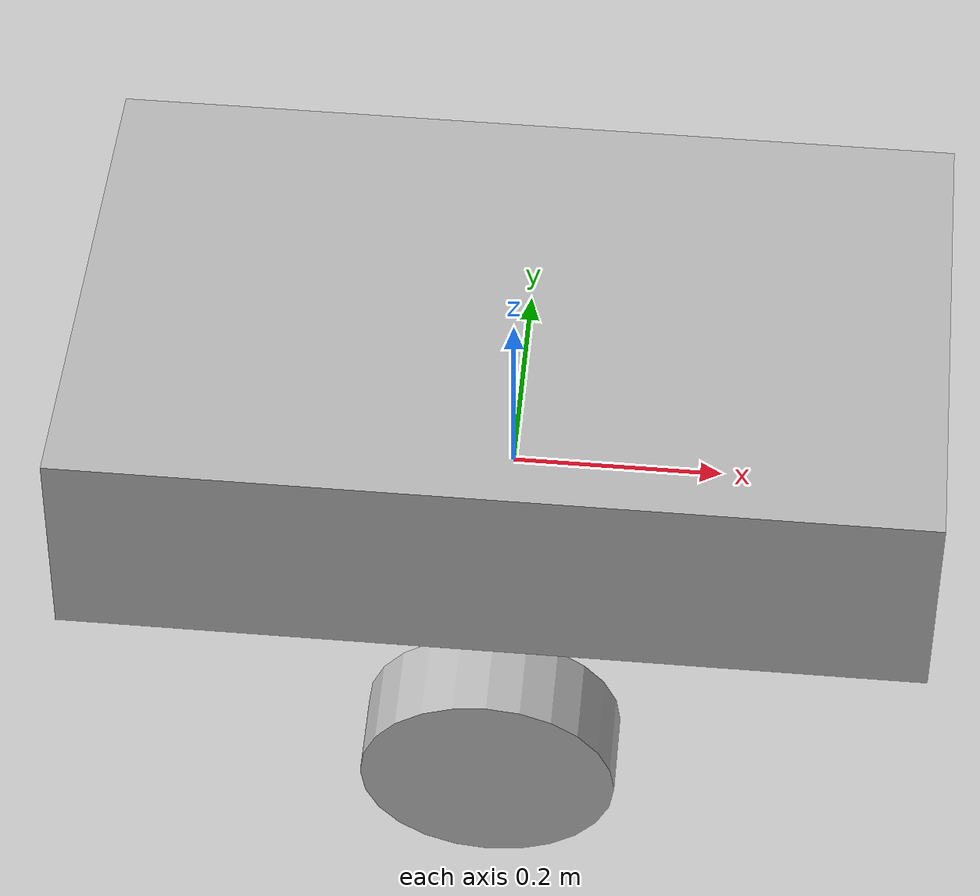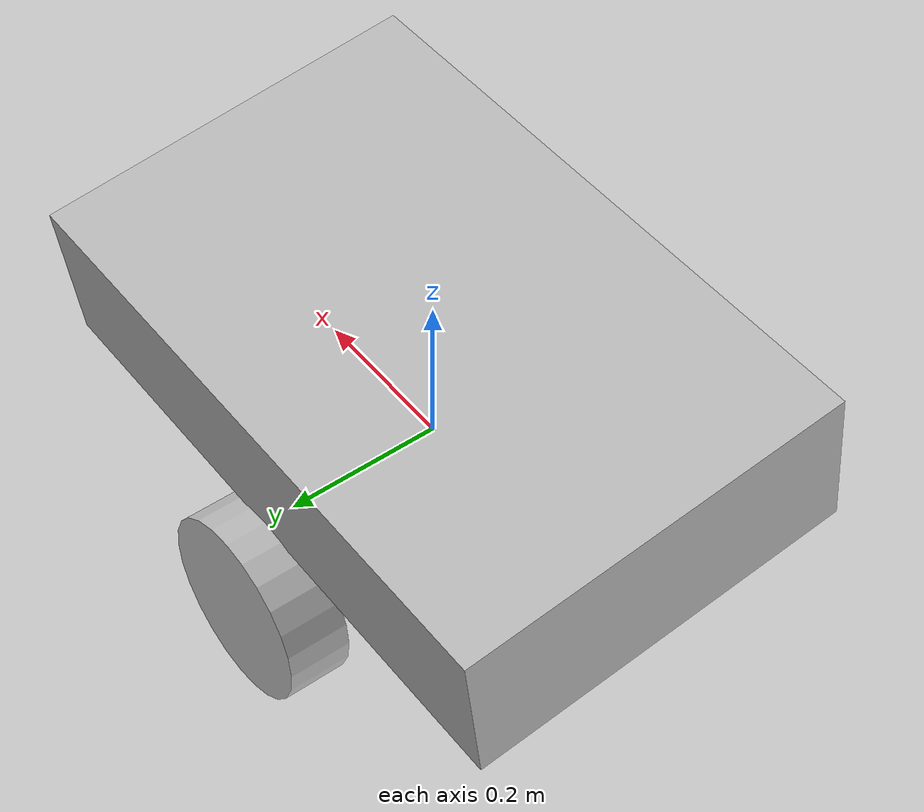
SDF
<?xml version="1.0"?>

<sdf version="1.10">

  <model name="vehicle_new">

    <!-- Base chassis          -->
    <link name="base_link">

      <pose>0 0 0.12 -0.12 0 0</pose>

      <inertial>
        <mass>5.0</mass>
        <inertia>
          <ixx>0.08</ixx>
          <iyy>0.15</iyy>
          <izz>0.20</izz>
          <ixy>0</ixy>
          <ixz>0</ixz>
          <iyz>0</iyz>
        </inertia>
      </inertial>

      <collision name="collision">
        <geometry>
          <box>
            <size>0.8 0.5 0.2</size>
          </box>
        </geometry>
      </collision>

      <visual name="visual">
        <geometry>
          <box>
            <size>0.8 0.5 0.2</size>
          </box>
        </geometry>
      </visual>

    </link>

    <!-- Left wheel            -->
    <link name="left_wheel">

      <pose>0 0.25 -0.12 1.5708 0 0</pose>

      <inertial>
        <mass>0.5</mass>
        <inertia>
          <ixx>0.005</ixx>
          <iyy>0.005</iyy>
          <izz>0.005</izz>
          <ixy>0</ixy>
          <ixz>0</ixz>
          <iyz>0</iyz>
        </inertia>
      </inertial>

      <collision name="collision">

        <geometry>
          <cylinder>
            <radius>0.12</radius>
            <length>0.08</length>
          </cylinder>
        </geometry>

      </collision>

      <visual name="visual">

        <geometry>
          <cylinder>
            <radius>0.12</radius>
            <length>0.08</length>
          </cylinder>
        </geometry>

      </visual>

    </link>

    <!-- Right wheel           -->
    <link name="right_wheel">

      <pose>0 -0.25 -0.12 1.5708 0 0</pose>

      <inertial>
        <mass>0.5</mass>
        <inertia>
          <ixx>0.005</ixx>
          <iyy>0.005</iyy>
          <izz>0.005</izz>
          <ixy>0</ixy>
          <ixz>0</ixz>
          <iyz>0</iyz>
        </inertia>
      </inertial>

      <collision name="collision">

        <geometry>
          <cylinder>
            <radius>0.12</radius>
            <length>0.08</length>
          </cylinder>
        </geometry>

      </collision>

      <visual name="visual">

        <geometry>
          <cylinder>
            <radius>0.12</radius>
            <length>0.08</length>
          </cylinder>
        </geometry>

      </visual>

    </link>

    <!-- Left wheel joint      -->
    <joint name="left_wheel_joint" type="revolute">

      <parent>base_link</parent>
      <child>left_wheel</child>

      <pose>0 0.25 -0.12 0 0 0</pose>

      <axis>
        <xyz>0 -1 0</xyz>
        <limit>
          <lower>-1e16</lower>
          <upper>1e16</upper>
        </limit>
      </axis>

    </joint>

    <!-- Right wheel joint     -->
    <joint name="right_wheel_joint" type="revolute">

      <parent>base_link</parent>
      <child>right_wheel</child>

      <pose>0 -0.25 0 0 0 0</pose>

      <axis>
        <xyz>0 -1 0</xyz>
        <limit>
          <lower>-1e16</lower>
          <upper>1e16</upper>
        </limit>
      </axis>

    </joint>

    <!-- Differential drive    -->
    <plugin
      filename="gz-sim-diff-drive-system"
      name="gz::sim::systems::DiffDrive">

      <left_joint>left_wheel_joint</left_joint>
      <right_joint>right_wheel_joint</right_joint>

      <wheel_separation>0.5</wheel_separation>
      <wheel_radius>0.12</wheel_radius>

      <topic>/model/vehicle_new/cmd_vel</topic>

      <odom_topic>/model/vehicle_new/odometry</odom_topic>

      <frame_id>odom</frame_id>
      <child_frame_id>base_link</child_frame_id>

    </plugin>

  </model>

</sdf>
